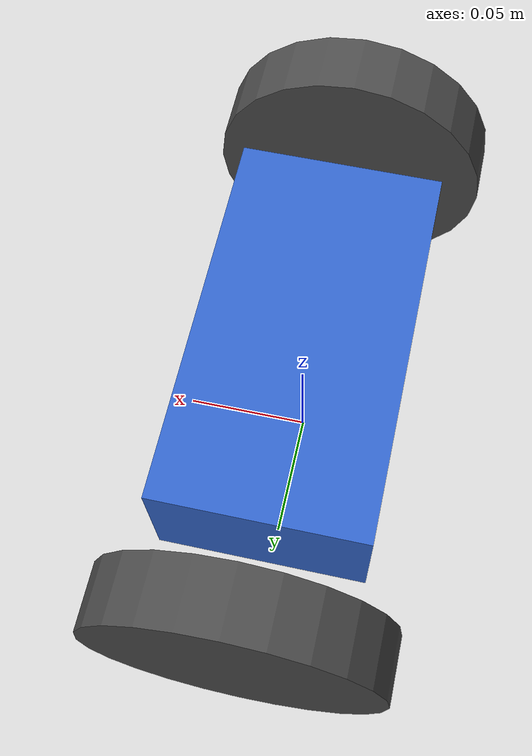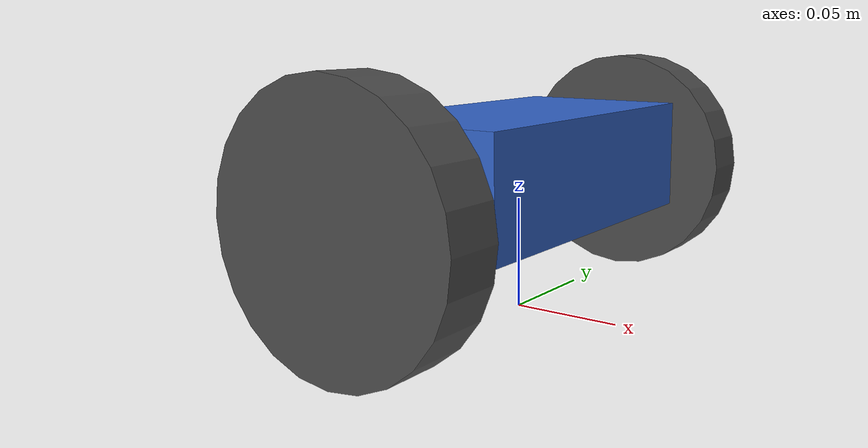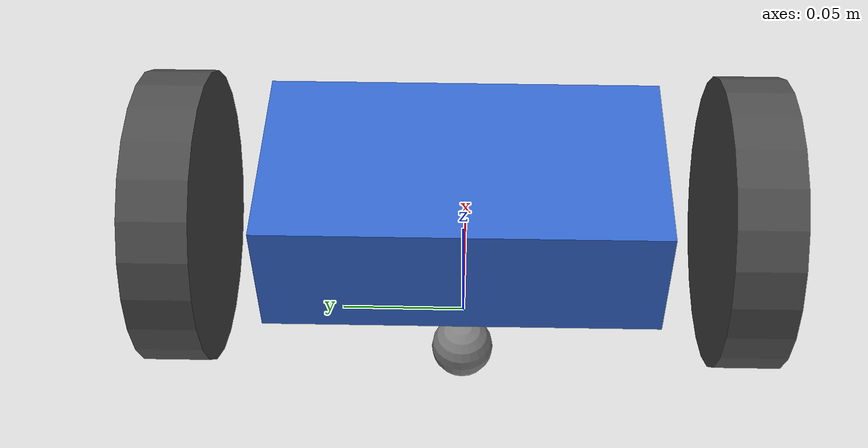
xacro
<?xml version="1.0"?>
<robot name="bbot" xmlns:xacro="http://ros.org/wiki/xacro">

    <!-- Arguments -->
    <xacro:arg name="prefix" default="bbot_" />
    <xacro:arg name="mock_hardware" default="true" />

    <!-- Import macros for hardware components -->
    <xacro:include filename="$(find bbot_description)/urdf/bbot_macro.xacro"/>

    <xacro:load_bbot
        prefix="$(arg prefix)"
        mock_hardware="$(arg mock_hardware)"/>

</robot>

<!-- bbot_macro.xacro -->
<robot name="bbot" xmlns:xacro="http://ros.org/wiki/xacro">

  <!-- Chassis dimensions -->
  <xacro:property name="chassis_length" value="0.08"/>
  <xacro:property name="chassis_width" value="0.15"/>
  <xacro:property name="chassis_height" value="0.05"/>
  <xacro:property name="chassis_mass" value="0.5"/>
  <xacro:property name="chassis_z" value="0.040"/>

  <!-- Wheel dimensions -->
  <xacro:property name="wheel_radius" value="0.056"/>
  <xacro:property name="wheel_width" value="0.025"/>
  <xacro:property name="wheel_mass" value="0.1"/>
  <xacro:property name="wheel_y_offset" value="0.1075"/>

  <!-- Caster dimensions -->
  <xacro:property name="caster_radius" value="0.012"/>
  <xacro:property name="caster_mass" value="0.02"/>
  <xacro:property name="caster_x_offset" value="${-chassis_length / 2 + caster_radius}"/>

  <!-- Wheel macro -->
  <xacro:macro name="bbot_wheel" params="prefix side y_offset">
    <link name="${prefix}wheel_${side}_link">
      <visual>
        <geometry>
          <cylinder radius="${wheel_radius}" length="${wheel_width}"/>
        </geometry>
        <material name="dark_grey">
          <color rgba="0.3 0.3 0.3 1.0"/>
        </material>
      </visual>
      <collision>
        <geometry>
          <cylinder radius="${wheel_radius}" length="${wheel_width}"/>
        </geometry>
      </collision>
      <inertial>
        <mass value="${wheel_mass}"/>
        <inertia ixx="${(1.0/12.0) * wheel_mass * (3 * wheel_radius * wheel_radius + wheel_width * wheel_width)}"
                 ixy="0" ixz="0"
                 iyy="${(1.0/12.0) * wheel_mass * (3 * wheel_radius * wheel_radius + wheel_width * wheel_width)}"
                 iyz="0"
                 izz="${(1.0/2.0) * wheel_mass * wheel_radius * wheel_radius}"/>
      </inertial>
    </link>
    <joint name="${prefix}wheel_${side}_joint" type="continuous">
      <parent link="${prefix}base_link"/>
      <child link="${prefix}wheel_${side}_link"/>
      <origin xyz="0 ${y_offset} 0" rpy="${-pi/2} 0 0"/>
      <axis xyz="0 0 1"/>
    </joint>
  </xacro:macro>

  <!-- Main robot macro -->
  <xacro:macro name="load_bbot" params="
    prefix:=bbot_
    joint_command_topic:=/picoros/joint_commands
    joint_states_topic:=/picoros/joint_states
    mock_hardware:=false">

    <!-- Base footprint (ground plane) -->
    <link name="${prefix}base_footprint"/>

    <joint name="${prefix}base_joint" type="fixed">
      <parent link="${prefix}base_footprint"/>
      <child link="${prefix}base_link"/>
      <origin xyz="0 0 ${wheel_radius}" rpy="0 0 0"/>
    </joint>

    <!-- Base link (chassis) -->
    <link name="${prefix}base_link">
      <visual>
        <origin xyz="0 0 ${chassis_z - wheel_radius + chassis_height / 2}" rpy="0 0 0"/>
        <geometry>
          <box size="${chassis_length} ${chassis_width} ${chassis_height}"/>
        </geometry>
        <material name="blue">
          <color rgba="0.2 0.4 0.8 1.0"/>
        </material>
      </visual>
      <collision>
        <origin xyz="0 0 ${chassis_z - wheel_radius + chassis_height / 2}" rpy="0 0 0"/>
        <geometry>
          <box size="${chassis_length} ${chassis_width} ${chassis_height}"/>
        </geometry>
      </collision>
      <inertial>
        <origin xyz="0 0 ${chassis_z - wheel_radius + chassis_height / 2}" rpy="0 0 0"/>
        <mass value="${chassis_mass}"/>
        <inertia ixx="${(1.0/12.0) * chassis_mass * (chassis_width * chassis_width + chassis_height * chassis_height)}"
                 ixy="0" ixz="0"
                 iyy="${(1.0/12.0) * chassis_mass * (chassis_length * chassis_length + chassis_height * chassis_height)}"
                 iyz="0"
                 izz="${(1.0/12.0) * chassis_mass * (chassis_length * chassis_length + chassis_width * chassis_width)}"/>
      </inertial>
    </link>

    <!-- Wheels -->
    <xacro:bbot_wheel prefix="${prefix}" side="left" y_offset="${wheel_y_offset}"/>
    <xacro:bbot_wheel prefix="${prefix}" side="right" y_offset="${-wheel_y_offset}"/>

    <!-- Caster -->
    <link name="${prefix}caster_link">
      <visual>
        <geometry>
          <sphere radius="${caster_radius}"/>
        </geometry>
        <material name="grey">
          <color rgba="0.5 0.5 0.5 1.0"/>
        </material>
      </visual>
      <collision>
        <geometry>
          <sphere radius="${caster_radius}"/>
        </geometry>
      </collision>
      <inertial>
        <mass value="${caster_mass}"/>
        <inertia ixx="${(2.0/5.0) * caster_mass * caster_radius * caster_radius}"
                 ixy="0" ixz="0"
                 iyy="${(2.0/5.0) * caster_mass * caster_radius * caster_radius}"
                 iyz="0"
                 izz="${(2.0/5.0) * caster_mass * caster_radius * caster_radius}"/>
      </inertial>
    </link>
    <joint name="${prefix}caster_joint" type="fixed">
      <parent link="${prefix}base_link"/>
      <child link="${prefix}caster_link"/>
      <origin xyz="${caster_x_offset} 0 ${caster_radius - wheel_radius}" rpy="0 0 0"/>
    </joint>

    <!-- ros2_control -->
    <xacro:include filename="$(find bbot_description)/urdf/bbot.ros2_control.xacro"/>
    <xacro:property name="ros2_control_name" value="bbot_base_control"/>
    <xacro:bbot_ros2_control
      name="${ros2_control_name}"
      mock_hardware="${mock_hardware}"
      joint_command_topic="${joint_command_topic}"
      joint_states_topic="${joint_states_topic}"/>

  </xacro:macro>
</robot>
